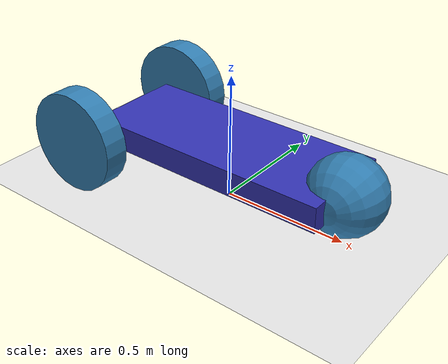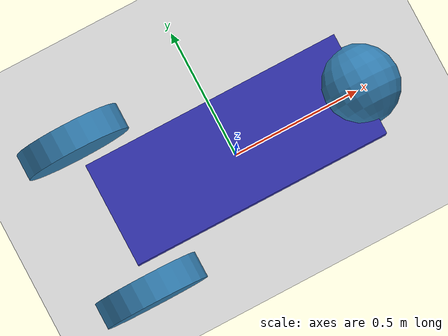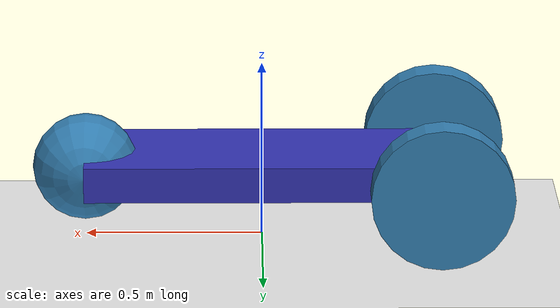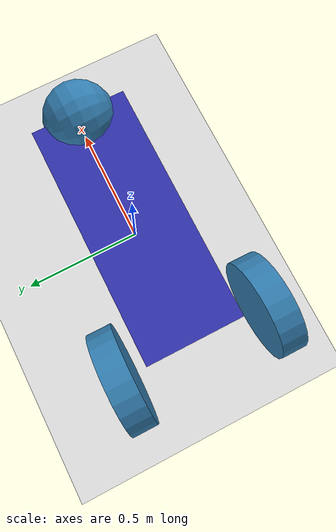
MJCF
<mujoco model="diff_drive">
    <worldbody>
        <light diffuse="0.5 0.5 0.5" pos="0 0 3" dir="0 0 -1"/>
        <geom type="plane" size="10 10 0.01" rgba="0.9 0.9 0.9 1" friction="1.0 0.005 0.0001"/>
        <body name="chassis" pos="0 0 0.2" euler="0 90 0">
            <joint type="free"/>
            <geom type="box" size="0.05 0.2 0.5" rgba="0.2 0.2 0.7 1"/>
            <body pos="0 0.3 -0.5" euler="90 0 0">
                <joint name="left-wheel" type="hinge" axis="0 0 -1"/>
                <geom type="cylinder" size="0.2 0.05" rgba="0.2 0.5 0.7 1" friction="0.8 0.005 0.0001"/>
            </body>
            <body pos="0 -0.3 -0.5" euler="90 0 0">
                <joint name="right-wheel" type="hinge" axis="0 0 -1"/>
                <geom type="cylinder" size="0.2 0.05" rgba="0.2 0.5 0.7 1" friction="0.8 0.005 0.0001"/>
            </body>
            <body pos="0 0 0.5" euler="90 0 0">
                <joint name="caster" type="ball"/>
                <geom type="sphere" size="0.15" rgba="0.2 0.5 0.7 1"/>
            </body>
        </body>
    </worldbody>

    <actuator>
        <velocity name="left-velocity-servo" joint="left-wheel" kv="100"/>
        <velocity name="right-velocity-servo" joint="right-wheel" kv="100"/>
    </actuator>
</mujoco>
